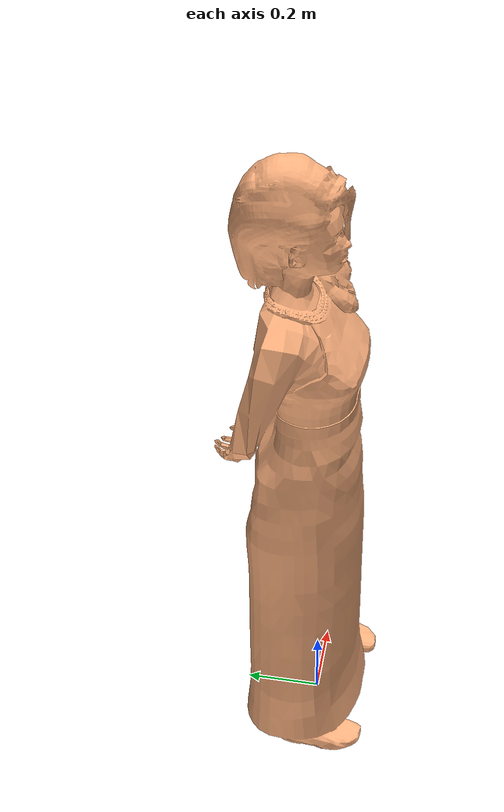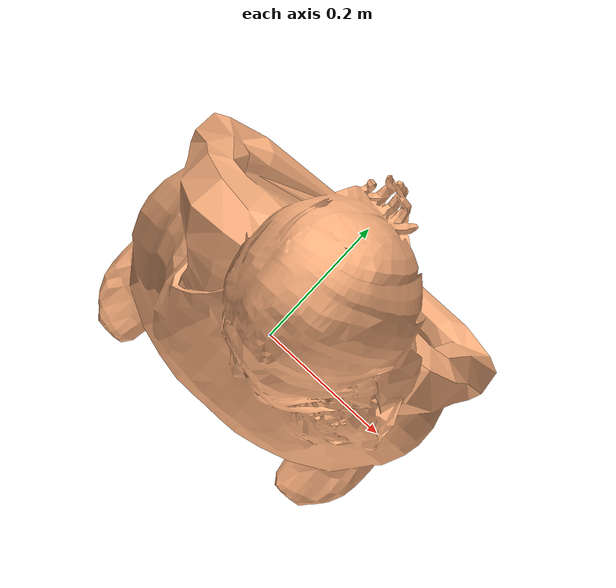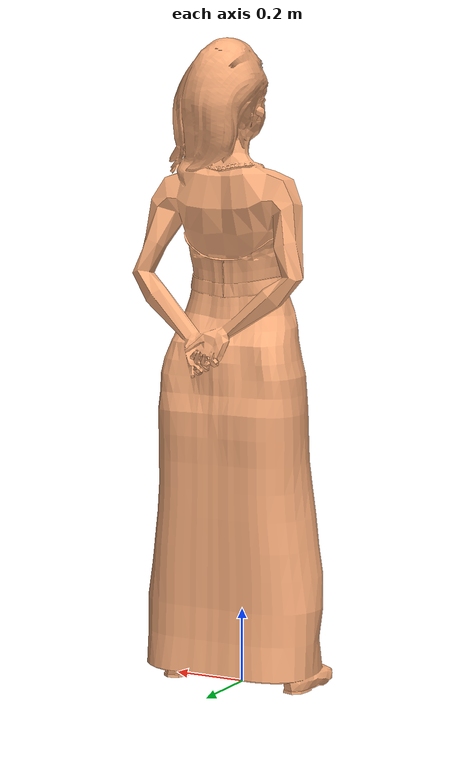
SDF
<?xml version="1.0"?>
<sdf version="1.9">
  <model name="m_casual_mic">
    <pose>0 0 0 0 0 0</pose>
    <static>false</static>

    <link name="body">
      <inertial>
        <mass>70.0</mass>
        <pose>0 0 0.9 0 0 0</pose>
        <inertia>
          <ixx>3.82</ixx>
          <ixy>0</ixy>
          <ixz>0</ixz>
          <iyy>3.82</iyy>
          <iyz>0</iyz>
          <izz>0.77</izz>
        </inertia>
      </inertial>

      <!-- Collision -->
      <collision name="person_collision">
        <pose>0 0 0.9 0 0 0</pose>
        <geometry>
          <box>
            <size>0.5 0.35 1.8</size>
          </box>
        </geometry>
      </collision>

      <!-- Walking Animation Visual -->
      <visual name="person_visual">
        <pose>0 0 0 0 0 0</pose>
        <geometry>
          <mesh>
            <uri>model://m_casual_mic/walk.dae</uri>
            <scale>1 1 1</scale>
          </mesh>
        </geometry>
        <material>
          <!-- Bright colored material for YOLO detection -->
          <ambient>0.8 0.6 0.4 1</ambient>
          <diffuse>1.0 0.7 0.5 1</diffuse>
          <specular>0.3 0.3 0.3 1</specular>
          <emissive>0.1 0.05 0.03 1</emissive>
        </material>
        <cast_shadows>true</cast_shadows>
      </visual>
    </link>
  </model>
</sdf>
